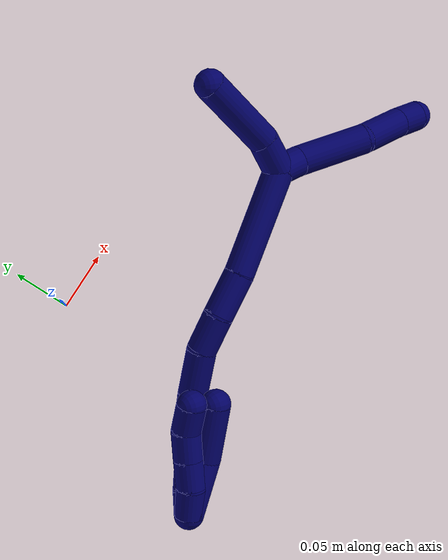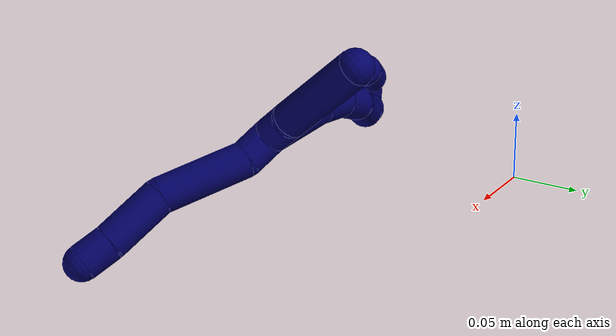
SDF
<sdf version="1.7">
 <world name="default">
  <model name="7">
   <static>0</static>
   <link name="7">
    <collision name="collision-cylinder-e_1_2_8">
     <pose>0.001078 -0.001569 0.01139 0.13693 0.093443 0.006412</pose>
     <geometry><cylinder><radius>0.0125</radius><length>0.023097</length></cylinder></geometry>
     <surface>
      <friction><ode><mu>1.16</mu><mu2>1.16</mu2><slip1>0</slip1><slip2>0</slip2></ode></friction>
      <contact><ode><kp>1e+06</kp><kd>1</kd><max_vel>0</max_vel><min_depth>0.001</min_depth></ode></contact>
     </surface>
    </collision>
    <visual name="visual-cylinder-e_1_2_8">
     <pose>0.001078 -0.001569 0.01139 0.13693 0.093443 0.006412</pose>
     <geometry><cylinder><radius>0.0125</radius><length>0.023097</length></cylinder></geometry>
     <material><ambient>0.003922 0 0.403922 1</ambient></material>
    </visual>
    <collision name="collision-cylinder-e_2_8_9">
     <pose>0.010329 0.001893 0.052121 -0.169854 0.267977 -0.02295</pose>
     <geometry><cylinder><radius>0.0125</radius><length>0.061742</length></cylinder></geometry>
     <surface>
      <friction><ode><mu>1.16</mu><mu2>1.16</mu2><slip1>0</slip1><slip2>0</slip2></ode></friction>
      <contact><ode><kp>1e+06</kp><kd>1</kd><max_vel>0</max_vel><min_depth>0.001</min_depth></ode></contact>
     </surface>
    </collision>
    <visual name="visual-cylinder-e_2_8_9">
     <pose>0.010329 0.001893 0.052121 -0.169854 0.267977 -0.02295</pose>
     <geometry><cylinder><radius>0.0125</radius><length>0.061742</length></cylinder></geometry>
     <material><ambient>0.003922 0 0.403922 1</ambient></material>
    </visual>
    <collision name="collision-cylinder-e_3_9_10">
     <pose>0.020635 0.004081 0.103004 0.131257 0.097788 0.006432</pose>
     <geometry><cylinder><radius>0.0125</radius><length>0.043667</length></cylinder></geometry>
     <surface>
      <friction><ode><mu>1.16</mu><mu2>1.16</mu2><slip1>0</slip1><slip2>0</slip2></ode></friction>
      <contact><ode><kp>1e+06</kp><kd>1</kd><max_vel>0</max_vel><min_depth>0.001</min_depth></ode></contact>
     </surface>
    </collision>
    <visual name="visual-cylinder-e_3_9_10">
     <pose>0.020635 0.004081 0.103004 0.131257 0.097788 0.006432</pose>
     <geometry><cylinder><radius>0.0125</radius><length>0.043667</length></cylinder></geometry>
     <material><ambient>0.003922 0 0.403922 1</ambient></material>
    </visual>
    <collision name="collision-cylinder-e_4_10_6">
     <pose>0.024077 0.001033 0.135212 0.019173 0.122285 0.001174</pose>
     <geometry><cylinder><radius>0.0125</radius><length>0.021494</length></cylinder></geometry>
     <surface>
      <friction><ode><mu>1.16</mu><mu2>1.16</mu2><slip1>0</slip1><slip2>0</slip2></ode></friction>
      <contact><ode><kp>1e+06</kp><kd>1</kd><max_vel>0</max_vel><min_depth>0.001</min_depth></ode></contact>
     </surface>
    </collision>
    <visual name="visual-cylinder-e_4_10_6">
     <pose>0.024077 0.001033 0.135212 0.019173 0.122285 0.001174</pose>
     <geometry><cylinder><radius>0.0125</radius><length>0.021494</length></cylinder></geometry>
     <material><ambient>0.003922 0 0.403922 1</ambient></material>
    </visual>
    <collision name="collision-cylinder-e_1_2_11">
     <pose>0.012072 -0.006022 -0.007105 2.43845 0.913683 1.85937</pose>
     <geometry><cylinder><radius>0.0125</radius><length>0.030495</length></cylinder></geometry>
     <surface>
      <friction><ode><mu>1.16</mu><mu2>1.16</mu2><slip1>0</slip1><slip2>0</slip2></ode></friction>
      <contact><ode><kp>1e+06</kp><kd>1</kd><max_vel>0</max_vel><min_depth>0.001</min_depth></ode></contact>
     </surface>
    </collision>
    <visual name="visual-cylinder-e_1_2_11">
     <pose>0.012072 -0.006022 -0.007105 2.43845 0.913683 1.85937</pose>
     <geometry><cylinder><radius>0.0125</radius><length>0.030495</length></cylinder></geometry>
     <material><ambient>0.003922 0 0.403922 1</ambient></material>
    </visual>
    <collision name="collision-cylinder-e_2_11_5">
     <pose>0.04642 -0.023502 -0.038298 2.69763 0.695782 2.02816</pose>
     <geometry><cylinder><radius>0.0125</radius><length>0.069505</length></cylinder></geometry>
     <surface>
      <friction><ode><mu>1.16</mu><mu2>1.16</mu2><slip1>0</slip1><slip2>0</slip2></ode></friction>
      <contact><ode><kp>1e+06</kp><kd>1</kd><max_vel>0</max_vel><min_depth>0.001</min_depth></ode></contact>
     </surface>
    </collision>
    <visual name="visual-cylinder-e_2_11_5">
     <pose>0.04642 -0.023502 -0.038298 2.69763 0.695782 2.02816</pose>
     <geometry><cylinder><radius>0.0125</radius><length>0.069505</length></cylinder></geometry>
     <material><ambient>0.003922 0 0.403922 1</ambient></material>
    </visual>
    <collision name="collision-cylinder-e_1_2_12">
     <pose>-0.036049 0.014739 -0.021432 -2.53918 -0.945758 2.05014</pose>
     <geometry><cylinder><radius>0.0125</radius><length>0.088906</length></cylinder></geometry>
     <surface>
      <friction><ode><mu>1.16</mu><mu2>1.16</mu2><slip1>0</slip1><slip2>0</slip2></ode></friction>
      <contact><ode><kp>1e+06</kp><kd>1</kd><max_vel>0</max_vel><min_depth>0.001</min_depth></ode></contact>
     </surface>
    </collision>
    <visual name="visual-cylinder-e_1_2_12">
     <pose>-0.036049 0.014739 -0.021432 -2.53918 -0.945758 2.05014</pose>
     <geometry><cylinder><radius>0.0125</radius><length>0.088906</length></cylinder></geometry>
     <material><ambient>0.003922 0 0.403922 1</ambient></material>
    </visual>
    <collision name="collision-cylinder-e_2_12_13">
     <pose>-0.087519 0.033637 -0.052472 -2.73302 -0.974365 2.39604</pose>
     <geometry><cylinder><radius>0.0125</radius><length>0.037279</length></cylinder></geometry>
     <surface>
      <friction><ode><mu>1.16</mu><mu2>1.16</mu2><slip1>0</slip1><slip2>0</slip2></ode></friction>
      <contact><ode><kp>1e+06</kp><kd>1</kd><max_vel>0</max_vel><min_depth>0.001</min_depth></ode></contact>
     </surface>
    </collision>
    <visual name="visual-cylinder-e_2_12_13">
     <pose>-0.087519 0.033637 -0.052472 -2.73302 -0.974365 2.39604</pose>
     <geometry><cylinder><radius>0.0125</radius><length>0.037279</length></cylinder></geometry>
     <material><ambient>0.003922 0 0.403922 1</ambient></material>
    </visual>
    <collision name="collision-cylinder-e_3_13_14">
     <pose>-0.117933 0.039702 -0.068073 -2.83374 -1.17363 2.68313</pose>
     <geometry><cylinder><radius>0.0125</radius><length>0.032516</length></cylinder></geometry>
     <surface>
      <friction><ode><mu>1.16</mu><mu2>1.16</mu2><slip1>0</slip1><slip2>0</slip2></ode></friction>
      <contact><ode><kp>1e+06</kp><kd>1</kd><max_vel>0</max_vel><min_depth>0.001</min_depth></ode></contact>
     </surface>
    </collision>
    <visual name="visual-cylinder-e_3_13_14">
     <pose>-0.117933 0.039702 -0.068073 -2.83374 -1.17363 2.68313</pose>
     <geometry><cylinder><radius>0.0125</radius><length>0.032516</length></cylinder></geometry>
     <material><ambient>0.003922 0 0.403922 1</ambient></material>
    </visual>
    <collision name="collision-cylinder-e_4_14_15">
     <pose>-0.152699 0.046166 -0.076907 -2.12813 -1.30557 1.88571</pose>
     <geometry><cylinder><radius>0.0125</radius><length>0.040979</length></cylinder></geometry>
     <surface>
      <friction><ode><mu>1.16</mu><mu2>1.16</mu2><slip1>0</slip1><slip2>0</slip2></ode></friction>
      <contact><ode><kp>1e+06</kp><kd>1</kd><max_vel>0</max_vel><min_depth>0.001</min_depth></ode></contact>
     </surface>
    </collision>
    <visual name="visual-cylinder-e_4_14_15">
     <pose>-0.152699 0.046166 -0.076907 -2.12813 -1.30557 1.88571</pose>
     <geometry><cylinder><radius>0.0125</radius><length>0.040979</length></cylinder></geometry>
     <material><ambient>0.003922 0 0.403922 1</ambient></material>
    </visual>
    <collision name="collision-cylinder-e_5_15_16">
     <pose>-0.181151 0.055029 -0.082363 -2.11671 -1.04491 1.59409</pose>
     <geometry><cylinder><radius>0.0125</radius><length>0.020068</length></cylinder></geometry>
     <surface>
      <friction><ode><mu>1.16</mu><mu2>1.16</mu2><slip1>0</slip1><slip2>0</slip2></ode></friction>
      <contact><ode><kp>1e+06</kp><kd>1</kd><max_vel>0</max_vel><min_depth>0.001</min_depth></ode></contact>
     </surface>
    </collision>
    <visual name="visual-cylinder-e_5_15_16">
     <pose>-0.181151 0.055029 -0.082363 -2.11671 -1.04491 1.59409</pose>
     <geometry><cylinder><radius>0.0125</radius><length>0.020068</length></cylinder></geometry>
     <material><ambient>0.003922 0 0.403922 1</ambient></material>
    </visual>
    <collision name="collision-cylinder-e_6_16_17">
     <pose>-0.197389 0.065697 -0.086834 -1.85446 -0.850996 1.08695</pose>
     <geometry><cylinder><radius>0.0125</radius><length>0.020109</length></cylinder></geometry>
     <surface>
      <friction><ode><mu>1.16</mu><mu2>1.16</mu2><slip1>0</slip1><slip2>0</slip2></ode></friction>
      <contact><ode><kp>1e+06</kp><kd>1</kd><max_vel>0</max_vel><min_depth>0.001</min_depth></ode></contact>
     </surface>
    </collision>
    <visual name="visual-cylinder-e_6_16_17">
     <pose>-0.197389 0.065697 -0.086834 -1.85446 -0.850996 1.08695</pose>
     <geometry><cylinder><radius>0.0125</radius><length>0.020109</length></cylinder></geometry>
     <material><ambient>0.003922 0 0.403922 1</ambient></material>
    </visual>
    <collision name="collision-cylinder-e_7_17_18">
     <pose>-0.212672 0.077671 -0.091703 -2.06379 -0.881116 1.33536</pose>
     <geometry><cylinder><radius>0.0125</radius><length>0.020021</length></cylinder></geometry>
     <surface>
      <friction><ode><mu>1.16</mu><mu2>1.16</mu2><slip1>0</slip1><slip2>0</slip2></ode></friction>
      <contact><ode><kp>1e+06</kp><kd>1</kd><max_vel>0</max_vel><min_depth>0.001</min_depth></ode></contact>
     </surface>
    </collision>
    <visual name="visual-cylinder-e_7_17_18">
     <pose>-0.212672 0.077671 -0.091703 -2.06379 -0.881116 1.33536</pose>
     <geometry><cylinder><radius>0.0125</radius><length>0.020021</length></cylinder></geometry>
     <material><ambient>0.003922 0 0.403922 1</ambient></material>
    </visual>
    <collision name="collision-cylinder-e_8_18_19">
     <pose>-0.228119 0.088937 -0.097686 -2.0542 -0.879902 1.32328</pose>
     <geometry><cylinder><radius>0.0125</radius><length>0.020045</length></cylinder></geometry>
     <surface>
      <friction><ode><mu>1.16</mu><mu2>1.16</mu2><slip1>0</slip1><slip2>0</slip2></ode></friction>
      <contact><ode><kp>1e+06</kp><kd>1</kd><max_vel>0</max_vel><min_depth>0.001</min_depth></ode></contact>
     </surface>
    </collision>
    <visual name="visual-cylinder-e_8_18_19">
     <pose>-0.228119 0.088937 -0.097686 -2.0542 -0.879902 1.32328</pose>
     <geometry><cylinder><radius>0.0125</radius><length>0.020045</length></cylinder></geometry>
     <material><ambient>0.003922 0 0.403922 1</ambient></material>
    </visual>
    <collision name="collision-cylinder-e_9_19_1">
     <pose>-0.243555 0.100741 -0.102521 -1.86548 -0.87612 1.12678</pose>
     <geometry><cylinder><radius>0.0125</radius><length>0.020076</length></cylinder></geometry>
     <surface>
      <friction><ode><mu>1.16</mu><mu2>1.16</mu2><slip1>0</slip1><slip2>0</slip2></ode></friction>
      <contact><ode><kp>1e+06</kp><kd>1</kd><max_vel>0</max_vel><min_depth>0.001</min_depth></ode></contact>
     </surface>
    </collision>
    <visual name="visual-cylinder-e_9_19_1">
     <pose>-0.243555 0.100741 -0.102521 -1.86548 -0.87612 1.12678</pose>
     <geometry><cylinder><radius>0.0125</radius><length>0.020076</length></cylinder></geometry>
     <material><ambient>0.003922 0 0.403922 1</ambient></material>
    </visual>
    <collision name="collision-cylinder-e_1_1_20">
     <pose>-0.230227 0.09859 -0.095007 0.724325 1.03386 0.42429</pose>
     <geometry><cylinder><radius>0.0125</radius><length>0.04897</length></cylinder></geometry>
     <surface>
      <friction><ode><mu>1.16</mu><mu2>1.16</mu2><slip1>0</slip1><slip2>0</slip2></ode></friction>
      <contact><ode><kp>1e+06</kp><kd>1</kd><max_vel>0</max_vel><min_depth>0.001</min_depth></ode></contact>
     </surface>
    </collision>
    <visual name="visual-cylinder-e_1_1_20">
     <pose>-0.230227 0.09859 -0.095007 0.724325 1.03386 0.42429</pose>
     <geometry><cylinder><radius>0.0125</radius><length>0.04897</length></cylinder></geometry>
     <material><ambient>0.003922 0 0.403922 1</ambient></material>
    </visual>
    <collision name="collision-cylinder-e_2_20_4">
     <pose>-0.184669 0.084039 -0.082345 1.08738 1.29037 0.853905</pose>
     <geometry><cylinder><radius>0.0125</radius><length>0.05103</length></cylinder></geometry>
     <surface>
      <friction><ode><mu>1.16</mu><mu2>1.16</mu2><slip1>0</slip1><slip2>0</slip2></ode></friction>
      <contact><ode><kp>1e+06</kp><kd>1</kd><max_vel>0</max_vel><min_depth>0.001</min_depth></ode></contact>
     </surface>
    </collision>
    <visual name="visual-cylinder-e_2_20_4">
     <pose>-0.184669 0.084039 -0.082345 1.08738 1.29037 0.853905</pose>
     <geometry><cylinder><radius>0.0125</radius><length>0.05103</length></cylinder></geometry>
     <material><ambient>0.003922 0 0.403922 1</ambient></material>
    </visual>
    <collision name="collision-cylinder-e_1_1_21">
     <pose>-0.239056 0.103077 -0.10355 1.3547 1.26137 1.06201</pose>
     <geometry><cylinder><radius>0.0125</radius><length>0.025637</length></cylinder></geometry>
     <surface>
      <friction><ode><mu>1.16</mu><mu2>1.16</mu2><slip1>0</slip1><slip2>0</slip2></ode></friction>
      <contact><ode><kp>1e+06</kp><kd>1</kd><max_vel>0</max_vel><min_depth>0.001</min_depth></ode></contact>
     </surface>
    </collision>
    <visual name="visual-cylinder-e_1_1_21">
     <pose>-0.239056 0.103077 -0.10355 1.3547 1.26137 1.06201</pose>
     <geometry><cylinder><radius>0.0125</radius><length>0.025637</length></cylinder></geometry>
     <material><ambient>0.003922 0 0.403922 1</ambient></material>
    </visual>
    <collision name="collision-cylinder-e_2_21_22">
     <pose>-0.215806 0.093285 -0.102664 1.56254 1.07445 1.0672</pose>
     <geometry><cylinder><radius>0.0125</radius><length>0.025112</length></cylinder></geometry>
     <surface>
      <friction><ode><mu>1.16</mu><mu2>1.16</mu2><slip1>0</slip1><slip2>0</slip2></ode></friction>
      <contact><ode><kp>1e+06</kp><kd>1</kd><max_vel>0</max_vel><min_depth>0.001</min_depth></ode></contact>
     </surface>
    </collision>
    <visual name="visual-cylinder-e_2_21_22">
     <pose>-0.215806 0.093285 -0.102664 1.56254 1.07445 1.0672</pose>
     <geometry><cylinder><radius>0.0125</radius><length>0.025112</length></cylinder></geometry>
     <material><ambient>0.003922 0 0.403922 1</ambient></material>
    </visual>
    <collision name="collision-cylinder-e_3_22_23">
     <pose>-0.193653 0.081667 -0.102493 1.5492 1.10113 1.08197</pose>
     <geometry><cylinder><radius>0.0125</radius><length>0.024923</length></cylinder></geometry>
     <surface>
      <friction><ode><mu>1.16</mu><mu2>1.16</mu2><slip1>0</slip1><slip2>0</slip2></ode></friction>
      <contact><ode><kp>1e+06</kp><kd>1</kd><max_vel>0</max_vel><min_depth>0.001</min_depth></ode></contact>
     </surface>
    </collision>
    <visual name="visual-cylinder-e_3_22_23">
     <pose>-0.193653 0.081667 -0.102493 1.5492 1.10113 1.08197</pose>
     <geometry><cylinder><radius>0.0125</radius><length>0.024923</length></cylinder></geometry>
     <material><ambient>0.003922 0 0.403922 1</ambient></material>
    </visual>
    <collision name="collision-cylinder-e_4_23_3">
     <pose>-0.170654 0.073841 -0.101001 1.01163 1.35698 0.83991</pose>
     <geometry><cylinder><radius>0.0125</radius><length>0.024328</length></cylinder></geometry>
     <surface>
      <friction><ode><mu>1.16</mu><mu2>1.16</mu2><slip1>0</slip1><slip2>0</slip2></ode></friction>
      <contact><ode><kp>1e+06</kp><kd>1</kd><max_vel>0</max_vel><min_depth>0.001</min_depth></ode></contact>
     </surface>
    </collision>
    <visual name="visual-cylinder-e_4_23_3">
     <pose>-0.170654 0.073841 -0.101001 1.01163 1.35698 0.83991</pose>
     <geometry><cylinder><radius>0.0125</radius><length>0.024328</length></cylinder></geometry>
     <material><ambient>0.003922 0 0.403922 1</ambient></material>
    </visual>
    <collision name="collision-sphere-3">
     <pose>-0.158767 0.071653 -0.099632 0 -0 0</pose>
     <geometry><sphere><radius>0.0125</radius></sphere></geometry>
     <surface>
      <friction><ode><mu>1.16</mu><mu2>1.16</mu2><slip1>0</slip1><slip2>0</slip2></ode></friction>
      <contact><ode><kp>1e+06</kp><kd>1</kd><max_vel>0</max_vel><min_depth>0.001</min_depth></ode></contact>
     </surface>
    </collision>
    <visual name="visual-sphere-3">
     <pose>-0.158767 0.071653 -0.099632 0 -0 0</pose>
     <geometry><sphere><radius>0.0125</radius></sphere></geometry>
     <material><ambient>0.003922 0 0.403922 1</ambient></material>
    </visual>
    <collision name="collision-sphere-23">
     <pose>-0.182541 0.076029 -0.102371 0 -0 0</pose>
     <geometry><sphere><radius>0.0125</radius></sphere></geometry>
     <surface>
      <friction><ode><mu>1.16</mu><mu2>1.16</mu2><slip1>0</slip1><slip2>0</slip2></ode></friction>
      <contact><ode><kp>1e+06</kp><kd>1</kd><max_vel>0</max_vel><min_depth>0.001</min_depth></ode></contact>
     </surface>
    </collision>
    <visual name="visual-sphere-23">
     <pose>-0.182541 0.076029 -0.102371 0 -0 0</pose>
     <geometry><sphere><radius>0.0125</radius></sphere></geometry>
     <material><ambient>0.003922 0 0.403922 1</ambient></material>
    </visual>
    <collision name="collision-sphere-22">
     <pose>-0.204765 0.087306 -0.102614 0 -0 0</pose>
     <geometry><sphere><radius>0.0125</radius></sphere></geometry>
     <surface>
      <friction><ode><mu>1.16</mu><mu2>1.16</mu2><slip1>0</slip1><slip2>0</slip2></ode></friction>
      <contact><ode><kp>1e+06</kp><kd>1</kd><max_vel>0</max_vel><min_depth>0.001</min_depth></ode></contact>
     </surface>
    </collision>
    <visual name="visual-sphere-22">
     <pose>-0.204765 0.087306 -0.102614 0 -0 0</pose>
     <geometry><sphere><radius>0.0125</radius></sphere></geometry>
     <material><ambient>0.003922 0 0.403922 1</ambient></material>
    </visual>
    <collision name="collision-sphere-21">
     <pose>-0.226846 0.099264 -0.102713 0 -0 0</pose>
     <geometry><sphere><radius>0.0125</radius></sphere></geometry>
     <surface>
      <friction><ode><mu>1.16</mu><mu2>1.16</mu2><slip1>0</slip1><slip2>0</slip2></ode></friction>
      <contact><ode><kp>1e+06</kp><kd>1</kd><max_vel>0</max_vel><min_depth>0.001</min_depth></ode></contact>
     </surface>
    </collision>
    <visual name="visual-sphere-21">
     <pose>-0.226846 0.099264 -0.102713 0 -0 0</pose>
     <geometry><sphere><radius>0.0125</radius></sphere></geometry>
     <material><ambient>0.003922 0 0.403922 1</ambient></material>
    </visual>
    <collision name="collision-sphere-4">
     <pose>-0.160151 0.077786 -0.079062 0 -0 0</pose>
     <geometry><sphere><radius>0.0125</radius></sphere></geometry>
     <surface>
      <friction><ode><mu>1.16</mu><mu2>1.16</mu2><slip1>0</slip1><slip2>0</slip2></ode></friction>
      <contact><ode><kp>1e+06</kp><kd>1</kd><max_vel>0</max_vel><min_depth>0.001</min_depth></ode></contact>
     </surface>
    </collision>
    <visual name="visual-sphere-4">
     <pose>-0.160151 0.077786 -0.079062 0 -0 0</pose>
     <geometry><sphere><radius>0.0125</radius></sphere></geometry>
     <material><ambient>0.003922 0 0.403922 1</ambient></material>
    </visual>
    <collision name="collision-sphere-20">
     <pose>-0.209188 0.090292 -0.085627 0 -0 0</pose>
     <geometry><sphere><radius>0.0125</radius></sphere></geometry>
     <surface>
      <friction><ode><mu>1.16</mu><mu2>1.16</mu2><slip1>0</slip1><slip2>0</slip2></ode></friction>
      <contact><ode><kp>1e+06</kp><kd>1</kd><max_vel>0</max_vel><min_depth>0.001</min_depth></ode></contact>
     </surface>
    </collision>
    <visual name="visual-sphere-20">
     <pose>-0.209188 0.090292 -0.085627 0 -0 0</pose>
     <geometry><sphere><radius>0.0125</radius></sphere></geometry>
     <material><ambient>0.003922 0 0.403922 1</ambient></material>
    </visual>
    <collision name="collision-sphere-11">
     <pose>0.024144 -0.012045 -0.014209 0 -0 0</pose>
     <geometry><sphere><radius>0.0125</radius></sphere></geometry>
     <surface>
      <friction><ode><mu>1.16</mu><mu2>1.16</mu2><slip1>0</slip1><slip2>0</slip2></ode></friction>
      <contact><ode><kp>1e+06</kp><kd>1</kd><max_vel>0</max_vel><min_depth>0.001</min_depth></ode></contact>
     </surface>
    </collision>
    <visual name="visual-sphere-11">
     <pose>0.024144 -0.012045 -0.014209 0 -0 0</pose>
     <geometry><sphere><radius>0.0125</radius></sphere></geometry>
     <material><ambient>0.003922 0 0.403922 1</ambient></material>
    </visual>
    <collision name="collision-sphere-6">
     <pose>0.025388 0.000828 0.145877 0 -0 0</pose>
     <geometry><sphere><radius>0.0125</radius></sphere></geometry>
     <surface>
      <friction><ode><mu>1.16</mu><mu2>1.16</mu2><slip1>0</slip1><slip2>0</slip2></ode></friction>
      <contact><ode><kp>1e+06</kp><kd>1</kd><max_vel>0</max_vel><min_depth>0.001</min_depth></ode></contact>
     </surface>
    </collision>
    <visual name="visual-sphere-6">
     <pose>0.025388 0.000828 0.145877 0 -0 0</pose>
     <geometry><sphere><radius>0.0125</radius></sphere></geometry>
     <material><ambient>0.003922 0 0.403922 1</ambient></material>
    </visual>
    <collision name="collision-sphere-10">
     <pose>0.022766 0.001237 0.124547 0 -0 0</pose>
     <geometry><sphere><radius>0.0125</radius></sphere></geometry>
     <surface>
      <friction><ode><mu>1.16</mu><mu2>1.16</mu2><slip1>0</slip1><slip2>0</slip2></ode></friction>
      <contact><ode><kp>1e+06</kp><kd>1</kd><max_vel>0</max_vel><min_depth>0.001</min_depth></ode></contact>
     </surface>
    </collision>
    <visual name="visual-sphere-10">
     <pose>0.022766 0.001237 0.124547 0 -0 0</pose>
     <geometry><sphere><radius>0.0125</radius></sphere></geometry>
     <material><ambient>0.003922 0 0.403922 1</ambient></material>
    </visual>
    <collision name="collision-sphere-9">
     <pose>0.018503 0.006925 0.081462 0 -0 0</pose>
     <geometry><sphere><radius>0.0125</radius></sphere></geometry>
     <surface>
      <friction><ode><mu>1.16</mu><mu2>1.16</mu2><slip1>0</slip1><slip2>0</slip2></ode></friction>
      <contact><ode><kp>1e+06</kp><kd>1</kd><max_vel>0</max_vel><min_depth>0.001</min_depth></ode></contact>
     </surface>
    </collision>
    <visual name="visual-sphere-9">
     <pose>0.018503 0.006925 0.081462 0 -0 0</pose>
     <geometry><sphere><radius>0.0125</radius></sphere></geometry>
     <material><ambient>0.003922 0 0.403922 1</ambient></material>
    </visual>
    <collision name="collision-sphere-2">
     <geometry><sphere><radius>0.0125</radius></sphere></geometry>
     <surface>
      <friction><ode><mu>1.16</mu><mu2>1.16</mu2><slip1>0</slip1><slip2>0</slip2></ode></friction>
      <contact><ode><kp>1e+06</kp><kd>1</kd><max_vel>0</max_vel><min_depth>0.001</min_depth></ode></contact>
     </surface>
    </collision>
    <visual name="visual-sphere-2">
     <geometry><sphere><radius>0.0125</radius></sphere></geometry>
     <material><ambient>0.003922 0 0.403922 1</ambient></material>
    </visual>
    <collision name="collision-sphere-19">
     <pose>-0.235843 0.094592 -0.100655 0 -0 0</pose>
     <geometry><sphere><radius>0.0125</radius></sphere></geometry>
     <surface>
      <friction><ode><mu>1.16</mu><mu2>1.16</mu2><slip1>0</slip1><slip2>0</slip2></ode></friction>
      <contact><ode><kp>1e+06</kp><kd>1</kd><max_vel>0</max_vel><min_depth>0.001</min_depth></ode></contact>
     </surface>
    </collision>
    <visual name="visual-sphere-19">
     <pose>-0.235843 0.094592 -0.100655 0 -0 0</pose>
     <geometry><sphere><radius>0.0125</radius></sphere></geometry>
     <material><ambient>0.003922 0 0.403922 1</ambient></material>
    </visual>
    <collision name="collision-sphere-8">
     <pose>0.002155 -0.003139 0.022781 0 -0 0</pose>
     <geometry><sphere><radius>0.0125</radius></sphere></geometry>
     <surface>
      <friction><ode><mu>1.16</mu><mu2>1.16</mu2><slip1>0</slip1><slip2>0</slip2></ode></friction>
      <contact><ode><kp>1e+06</kp><kd>1</kd><max_vel>0</max_vel><min_depth>0.001</min_depth></ode></contact>
     </surface>
    </collision>
    <visual name="visual-sphere-8">
     <pose>0.002155 -0.003139 0.022781 0 -0 0</pose>
     <geometry><sphere><radius>0.0125</radius></sphere></geometry>
     <material><ambient>0.003922 0 0.403922 1</ambient></material>
    </visual>
    <collision name="collision-sphere-5">
     <pose>0.068696 -0.034959 -0.062386 0 -0 0</pose>
     <geometry><sphere><radius>0.0125</radius></sphere></geometry>
     <surface>
      <friction><ode><mu>1.16</mu><mu2>1.16</mu2><slip1>0</slip1><slip2>0</slip2></ode></friction>
      <contact><ode><kp>1e+06</kp><kd>1</kd><max_vel>0</max_vel><min_depth>0.001</min_depth></ode></contact>
     </surface>
    </collision>
    <visual name="visual-sphere-5">
     <pose>0.068696 -0.034959 -0.062386 0 -0 0</pose>
     <geometry><sphere><radius>0.0125</radius></sphere></geometry>
     <material><ambient>0.003922 0 0.403922 1</ambient></material>
    </visual>
    <collision name="collision-sphere-12">
     <pose>-0.072098 0.029477 -0.042864 0 -0 0</pose>
     <geometry><sphere><radius>0.0125</radius></sphere></geometry>
     <surface>
      <friction><ode><mu>1.16</mu><mu2>1.16</mu2><slip1>0</slip1><slip2>0</slip2></ode></friction>
      <contact><ode><kp>1e+06</kp><kd>1</kd><max_vel>0</max_vel><min_depth>0.001</min_depth></ode></contact>
     </surface>
    </collision>
    <visual name="visual-sphere-12">
     <pose>-0.072098 0.029477 -0.042864 0 -0 0</pose>
     <geometry><sphere><radius>0.0125</radius></sphere></geometry>
     <material><ambient>0.003922 0 0.403922 1</ambient></material>
    </visual>
    <collision name="collision-sphere-13">
     <pose>-0.102941 0.037796 -0.06208 0 -0 0</pose>
     <geometry><sphere><radius>0.0125</radius></sphere></geometry>
     <surface>
      <friction><ode><mu>1.16</mu><mu2>1.16</mu2><slip1>0</slip1><slip2>0</slip2></ode></friction>
      <contact><ode><kp>1e+06</kp><kd>1</kd><max_vel>0</max_vel><min_depth>0.001</min_depth></ode></contact>
     </surface>
    </collision>
    <visual name="visual-sphere-13">
     <pose>-0.102941 0.037796 -0.06208 0 -0 0</pose>
     <geometry><sphere><radius>0.0125</radius></sphere></geometry>
     <material><ambient>0.003922 0 0.403922 1</ambient></material>
    </visual>
    <collision name="collision-sphere-14">
     <pose>-0.132926 0.041607 -0.074066 0 -0 0</pose>
     <geometry><sphere><radius>0.0125</radius></sphere></geometry>
     <surface>
      <friction><ode><mu>1.16</mu><mu2>1.16</mu2><slip1>0</slip1><slip2>0</slip2></ode></friction>
      <contact><ode><kp>1e+06</kp><kd>1</kd><max_vel>0</max_vel><min_depth>0.001</min_depth></ode></contact>
     </surface>
    </collision>
    <visual name="visual-sphere-14">
     <pose>-0.132926 0.041607 -0.074066 0 -0 0</pose>
     <geometry><sphere><radius>0.0125</radius></sphere></geometry>
     <material><ambient>0.003922 0 0.403922 1</ambient></material>
    </visual>
    <collision name="collision-sphere-15">
     <pose>-0.172472 0.050724 -0.079748 0 -0 0</pose>
     <geometry><sphere><radius>0.0125</radius></sphere></geometry>
     <surface>
      <friction><ode><mu>1.16</mu><mu2>1.16</mu2><slip1>0</slip1><slip2>0</slip2></ode></friction>
      <contact><ode><kp>1e+06</kp><kd>1</kd><max_vel>0</max_vel><min_depth>0.001</min_depth></ode></contact>
     </surface>
    </collision>
    <visual name="visual-sphere-15">
     <pose>-0.172472 0.050724 -0.079748 0 -0 0</pose>
     <geometry><sphere><radius>0.0125</radius></sphere></geometry>
     <material><ambient>0.003922 0 0.403922 1</ambient></material>
    </visual>
    <collision name="collision-sphere-16">
     <pose>-0.189829 0.059334 -0.084979 0 -0 0</pose>
     <geometry><sphere><radius>0.0125</radius></sphere></geometry>
     <surface>
      <friction><ode><mu>1.16</mu><mu2>1.16</mu2><slip1>0</slip1><slip2>0</slip2></ode></friction>
      <contact><ode><kp>1e+06</kp><kd>1</kd><max_vel>0</max_vel><min_depth>0.001</min_depth></ode></contact>
     </surface>
    </collision>
    <visual name="visual-sphere-16">
     <pose>-0.189829 0.059334 -0.084979 0 -0 0</pose>
     <geometry><sphere><radius>0.0125</radius></sphere></geometry>
     <material><ambient>0.003922 0 0.403922 1</ambient></material>
    </visual>
    <collision name="collision-sphere-17">
     <pose>-0.204949 0.07206 -0.088689 0 -0 0</pose>
     <geometry><sphere><radius>0.0125</radius></sphere></geometry>
     <surface>
      <friction><ode><mu>1.16</mu><mu2>1.16</mu2><slip1>0</slip1><slip2>0</slip2></ode></friction>
      <contact><ode><kp>1e+06</kp><kd>1</kd><max_vel>0</max_vel><min_depth>0.001</min_depth></ode></contact>
     </surface>
    </collision>
    <visual name="visual-sphere-17">
     <pose>-0.204949 0.07206 -0.088689 0 -0 0</pose>
     <geometry><sphere><radius>0.0125</radius></sphere></geometry>
     <material><ambient>0.003922 0 0.403922 1</ambient></material>
    </visual>
    <collision name="collision-sphere-18">
     <pose>-0.220394 0.083282 -0.094718 0 -0 0</pose>
     <geometry><sphere><radius>0.0125</radius></sphere></geometry>
     <surface>
      <friction><ode><mu>1.16</mu><mu2>1.16</mu2><slip1>0</slip1><slip2>0</slip2></ode></friction>
      <contact><ode><kp>1e+06</kp><kd>1</kd><max_vel>0</max_vel><min_depth>0.001</min_depth></ode></contact>
     </surface>
    </collision>
    <visual name="visual-sphere-18">
     <pose>-0.220394 0.083282 -0.094718 0 -0 0</pose>
     <geometry><sphere><radius>0.0125</radius></sphere></geometry>
     <material><ambient>0.003922 0 0.403922 1</ambient></material>
    </visual>
    <collision name="collision-sphere-1">
     <pose>-0.251266 0.106889 -0.104387 0 -0 0</pose>
     <geometry><sphere><radius>0.0125</radius></sphere></geometry>
     <surface>
      <friction><ode><mu>1.16</mu><mu2>1.16</mu2><slip1>0</slip1><slip2>0</slip2></ode></friction>
      <contact><ode><kp>1e+06</kp><kd>1</kd><max_vel>0</max_vel><min_depth>0.001</min_depth></ode></contact>
     </surface>
    </collision>
    <visual name="visual-sphere-1">
     <pose>-0.251266 0.106889 -0.104387 0 -0 0</pose>
     <geometry><sphere><radius>0.0125</radius></sphere></geometry>
     <material><ambient>0.003922 0 0.403922 1</ambient></material>
    </visual>
    <inertial>
     <pose>-0.09791 0.039907 -0.039427 0 -0 0</pose>
     <mass>0.75</mass>
     <inertia><ixx>8.6e-05</ixx><ixy>0</ixy><ixz>0</ixz><iyy>0.000229</iyy><iyz>0</iyz><izz>4e-06</izz></inertia>
    </inertial>
   </link>
   <pose>0.180522 -0.095445 0.074155 2.42408 -0.750602 0.266661</pose>
  </model>
 </world>
</sdf>
